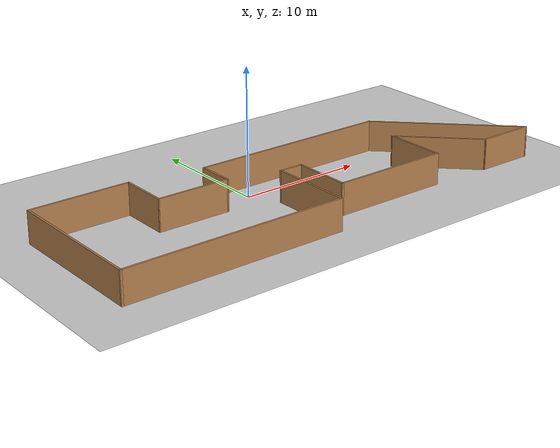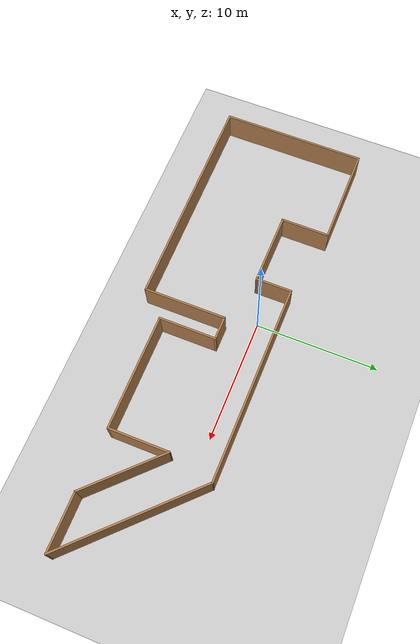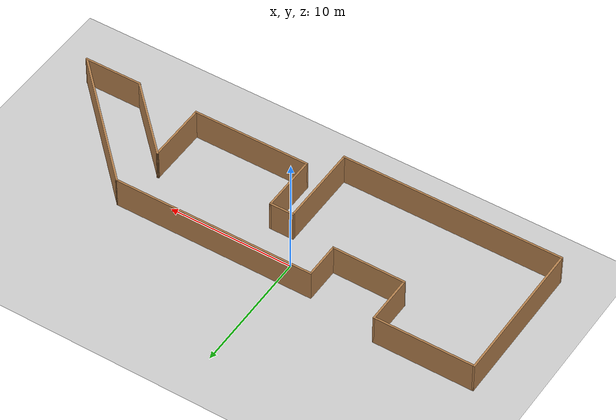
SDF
<sdf version="1.6">
 <world name="default">
  <light name="sun" type="directional">
   <pose>0 0 10 0 -0 0</pose>
   <diffuse>0.8 0.8 0.8 1</diffuse>
   <specular>0.2 0.2 0.2 1</specular>
   <attenuation>
    <range>1000</range>
    <constant>0.9</constant>
    <linear>0.01</linear>
    <quadratic>0.001</quadratic>
   </attenuation>
   <direction>-0.5 0.1 -0.9</direction>
  </light>
  <model name="ground_plane">
   <static>1</static>
   <link name="link">
    <collision name="collision">
     <geometry><plane><normal>0 0 1</normal><size>100 100</size></plane></geometry>
     <surface>
      <contact><collide_bitmask>65535</collide_bitmask></contact>
      <friction><ode><mu>100</mu><mu2>50</mu2></ode></friction>
     </surface>
    </collision>
    <visual name="visual">
     <cast_shadows>0</cast_shadows>
     <geometry><plane><normal>0 0 1</normal><size>100 100</size></plane></geometry>
     <material>
      <script><uri>file://media/materials/scripts/gazebo.material</uri><name>Gazebo/Grey</name></script>
     </material>
    </visual>
   </link>
  </model>
  <gravity>0 0 -9.8</gravity>
  <magnetic_field>6e-06 2.3e-05 -4.2e-05</magnetic_field>
  <atmosphere type="adiabatic"/>
  <physics name="default_physics" default="0" type="ode">
   <max_step_size>0.001</max_step_size>
   <real_time_factor>1</real_time_factor>
   <real_time_update_rate>1000</real_time_update_rate>
  </physics>
  <scene><ambient>0.4 0.4 0.4 1</ambient><background>0.7 0.7 0.7 1</background><shadows>1</shadows></scene>
  <spherical_coordinates>
   <surface_model>EARTH_WGS84</surface_model>
   <latitude_deg>0</latitude_deg>
   <longitude_deg>0</longitude_deg>
   <elevation>0</elevation>
   <heading_deg>0</heading_deg>
  </spherical_coordinates>
  <model name="simple_building">
   <pose>2.91807 -3.09231 0 0 -0 0</pose>
   <link name="Wall_0">
    <collision name="Wall_0_Collision">
     <geometry><box><size>3 0.15 2.5</size></box></geometry>
     <pose>0 0 1.25 0 -0 0</pose>
    </collision>
    <visual name="Wall_0_Visual">
     <pose>0 0 1.25 0 -0 0</pose>
     <geometry><box><size>3 0.15 2.5</size></box></geometry>
     <material>
      <script><uri>file://media/materials/scripts/gazebo.material</uri><name>Gazebo/Wood</name></script>
      <ambient>1 1 1 1</ambient>
     </material>
     <meta><layer>0</layer></meta>
    </visual>
    <pose>-5.63807 3.33731 0 0 -0 1.5708</pose>
   </link>
   <link name="Wall_1">
    <collision name="Wall_1_Collision">
     <geometry><box><size>16.25 0.15 2.5</size></box></geometry>
     <pose>0 0 1.25 0 -0 0</pose>
    </collision>
    <visual name="Wall_1_Visual">
     <pose>0 0 1.25 0 -0 0</pose>
     <geometry><box><size>16.25 0.15 2.5</size></box></geometry>
     <material>
      <script><uri>file://media/materials/scripts/gazebo.material</uri><name>Gazebo/Wood</name></script>
      <ambient>1 1 1 1</ambient>
     </material>
     <meta><layer>0</layer></meta>
    </visual>
    <pose>2.41193 4.76231 0 0 -0 0</pose>
   </link>
   <link name="Wall_10">
    <collision name="Wall_10_Collision">
     <geometry><box><size>17.75 0.15 2.5</size></box></geometry>
     <pose>0 0 1.25 0 -0 0</pose>
    </collision>
    <visual name="Wall_10_Visual">
     <pose>0 0 1.25 0 -0 0</pose>
     <geometry><box><size>17.75 0.15 2.5</size></box></geometry>
     <material>
      <script><uri>file://media/materials/scripts/gazebo.material</uri><name>Gazebo/Wood</name></script>
      <ambient>1 1 1 1</ambient>
     </material>
     <meta><layer>0</layer></meta>
    </visual>
    <pose>-10.4258 -5.8 0 0 -0 3.14159</pose>
   </link>
   <link name="Wall_11">
    <collision name="Wall_11_Collision">
     <geometry><box><size>11.75 0.15 2.5</size></box></geometry>
     <pose>0 0 1.25 0 -0 0</pose>
    </collision>
    <visual name="Wall_11_Visual">
     <pose>0 0 1.25 0 -0 0</pose>
     <geometry><box><size>11.75 0.15 2.5</size></box></geometry>
     <material>
      <script><uri>file://media/materials/scripts/gazebo.material</uri><name>Gazebo/Wood</name></script>
      <ambient>1 1 1 1</ambient>
     </material>
     <meta><layer>0</layer></meta>
    </visual>
    <pose>-19.2258 0 0 0 -0 1.5708</pose>
   </link>
   <link name="Wall_12">
    <collision name="Wall_12_Collision">
     <geometry><box><size>8 0.15 2.5</size></box></geometry>
     <pose>0 0 1.25 0 -0 0</pose>
    </collision>
    <visual name="Wall_12_Visual">
     <pose>0 0 1.25 0 -0 0</pose>
     <geometry><box><size>8 0.15 2.5</size></box></geometry>
     <material>
      <script><uri>file://media/materials/scripts/gazebo.material</uri><name>Gazebo/Wood</name></script>
      <ambient>1 1 1 1</ambient>
     </material>
     <meta><layer>0</layer></meta>
    </visual>
    <pose>-15.3008 5.8 0 0 -0 0</pose>
   </link>
   <link name="Wall_13">
    <collision name="Wall_13_Collision">
     <geometry><box><size>4 0.15 2.5</size></box></geometry>
     <pose>0 0 1.25 0 -0 0</pose>
    </collision>
    <visual name="Wall_13_Visual">
     <pose>0 0 1.25 0 -0 0</pose>
     <geometry><box><size>4 0.15 2.5</size></box></geometry>
     <material>
      <script><uri>file://media/materials/scripts/gazebo.material</uri><name>Gazebo/Wood</name></script>
      <ambient>1 1 1 1</ambient>
     </material>
     <meta><layer>0</layer></meta>
    </visual>
    <pose>-11.3758 3.875 0 0 0 -1.5708</pose>
   </link>
   <link name="Wall_14">
    <collision name="Wall_14_Collision">
     <geometry><box><size>5.88781 0.15 2.5</size></box></geometry>
     <pose>0 0 1.25 0 -0 0</pose>
    </collision>
    <visual name="Wall_14_Visual">
     <pose>0 0 1.25 0 -0 0</pose>
     <geometry><box><size>5.88781 0.15 2.5</size></box></geometry>
     <material>
      <script><uri>file://media/materials/scripts/gazebo.material</uri><name>Gazebo/Wood</name></script>
      <ambient>1 1 1 1</ambient>
     </material>
     <meta><layer>0</layer></meta>
    </visual>
    <pose>-8.50692 1.93115 0 0 0 -0.006569</pose>
   </link>
   <link name="Wall_2">
    <collision name="Wall_2_Collision">
     <geometry><box><size>12.5 0.15 2.5</size></box></geometry>
     <pose>0 0 1.25 0 -0 0</pose>
    </collision>
    <visual name="Wall_2_Visual">
     <pose>0 0 1.25 0 -0 0</pose>
     <geometry><box><size>12.5 0.15 2.5</size></box></geometry>
     <material>
      <script><uri>file://media/materials/scripts/gazebo.material</uri><name>Gazebo/Wood</name></script>
      <ambient>1 1 1 1</ambient>
     </material>
     <meta><layer>0</layer></meta>
    </visual>
    <pose>14.8283 0.395926 0 0 0 -0.785398</pose>
   </link>
   <link name="Wall_3">
    <collision name="Wall_3_Collision">
     <geometry><box><size>4.75 0.15 2.5</size></box></geometry>
     <pose>0 0 1.25 0 -0 0</pose>
    </collision>
    <visual name="Wall_3_Visual">
     <pose>0 0 1.25 0 -0 0</pose>
     <geometry><box><size>4.75 0.15 2.5</size></box></geometry>
     <material>
      <script><uri>file://media/materials/scripts/gazebo.material</uri><name>Gazebo/Wood</name></script>
      <ambient>1 1 1 1</ambient>
     </material>
     <meta><layer>0</layer></meta>
    </visual>
    <pose>16.8947 -3.97046 0 0 -0 3.14159</pose>
   </link>
   <link name="Wall_4">
    <collision name="Wall_4_Collision">
     <geometry><box><size>7.25 0.15 2.5</size></box></geometry>
     <pose>0 0 1.25 0 -0 0</pose>
    </collision>
    <visual name="Wall_4_Visual">
     <pose>0 0 1.25 0 -0 0</pose>
     <geometry><box><size>7.25 0.15 2.5</size></box></geometry>
     <material>
      <script><uri>file://media/materials/scripts/gazebo.material</uri><name>Gazebo/Wood</name></script>
      <ambient>1 1 1 1</ambient>
     </material>
     <meta><layer>0</layer></meta>
    </visual>
    <pose>12.0845 -1.46023 0 0 -0 2.35619</pose>
   </link>
   <link name="Wall_5">
    <collision name="Wall_5_Collision">
     <geometry><box><size>5 0.15 2.5</size></box></geometry>
     <pose>0 0 1.25 0 -0 0</pose>
    </collision>
    <visual name="Wall_5_Visual">
     <pose>0 0 1.25 0 -0 0</pose>
     <geometry><box><size>5 0.15 2.5</size></box></geometry>
     <material>
      <script><uri>file://media/materials/scripts/gazebo.material</uri><name>Gazebo/Wood</name></script>
      <ambient>1 1 1 1</ambient>
     </material>
     <meta><layer>0</layer></meta>
    </visual>
    <pose>9.57424 -1.375 0 0 0 -1.5708</pose>
   </link>
   <link name="Wall_6">
    <collision name="Wall_6_Collision">
     <geometry><box><size>9.5 0.15 2.5</size></box></geometry>
     <pose>0 0 1.25 0 -0 0</pose>
    </collision>
    <visual name="Wall_6_Visual">
     <pose>0 0 1.25 0 -0 0</pose>
     <geometry><box><size>9.5 0.15 2.5</size></box></geometry>
     <material>
      <script><uri>file://media/materials/scripts/gazebo.material</uri><name>Gazebo/Wood</name></script>
      <ambient>1 1 1 1</ambient>
     </material>
     <meta><layer>0</layer></meta>
    </visual>
    <pose>4.89924 -3.8 0 0 -0 3.14159</pose>
   </link>
   <link name="Wall_7">
    <collision name="Wall_7_Collision">
     <geometry><box><size>4.75 0.15 2.5</size></box></geometry>
     <pose>0 0 1.25 0 -0 0</pose>
    </collision>
    <visual name="Wall_7_Visual">
     <pose>0 0 1.25 0 -0 0</pose>
     <geometry><box><size>4.75 0.15 2.5</size></box></geometry>
     <material>
      <script><uri>file://media/materials/scripts/gazebo.material</uri><name>Gazebo/Wood</name></script>
      <ambient>1 1 1 1</ambient>
     </material>
     <meta><layer>0</layer></meta>
    </visual>
    <pose>0.224239 -1.5 0 0 -0 1.5708</pose>
   </link>
   <link name="Wall_8">
    <collision name="Wall_8_Collision">
     <geometry><box><size>2 0.15 2.5</size></box></geometry>
     <pose>0 0 1.25 0 -0 0</pose>
    </collision>
    <visual name="Wall_8_Visual">
     <pose>0 0 1.25 0 -0 0</pose>
     <geometry><box><size>2 0.15 2.5</size></box></geometry>
     <material>
      <script><uri>file://media/materials/scripts/gazebo.material</uri><name>Gazebo/Wood</name></script>
      <ambient>1 1 1 1</ambient>
     </material>
     <meta><layer>0</layer></meta>
    </visual>
    <pose>-0.700761 0.8 0 0 -0 3.14159</pose>
   </link>
   <link name="Wall_9">
    <collision name="Wall_9_Collision">
     <geometry><box><size>6.75 0.15 2.5</size></box></geometry>
     <pose>0 0 1.25 0 -0 0</pose>
    </collision>
    <visual name="Wall_9_Visual">
     <pose>0 0 1.25 0 -0 0</pose>
     <geometry><box><size>6.75 0.15 2.5</size></box></geometry>
     <material>
      <script><uri>file://media/materials/scripts/gazebo.material</uri><name>Gazebo/Wood</name></script>
      <ambient>1 1 1 1</ambient>
     </material>
     <meta><layer>0</layer></meta>
    </visual>
    <pose>-1.62576 -2.5 0 0 0 -1.5708</pose>
   </link>
   <static>1</static>
  </model>
 </world>
</sdf>
